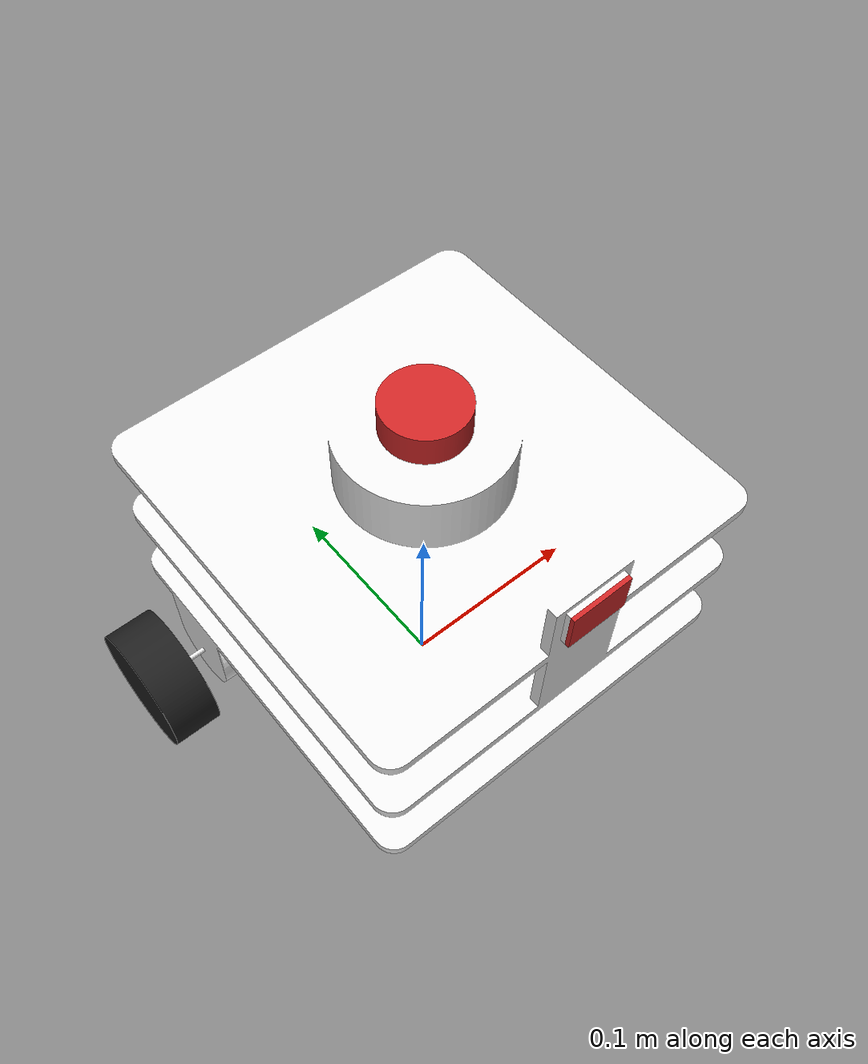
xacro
<?xml version="1.0" ?>
<robot name="bbot" xmlns:xacro="http://www.ros.org/wiki/xacro">

<xacro:include filename="$(find bbot_description)/urdf/materials.xacro" />
<xacro:include filename="$(find bbot_description)/urdf/bbot.trans" />
<xacro:include filename="$(find bbot_description)/urdf/bbot.gazebo" />
<xacro:include filename="$(find bbot_description)/urdf/camera1.xacro" />
<xacro:include filename="$(find bbot_description)/urdf/lidar1.xacro" />
<xacro:include filename="$(find bbot_description)/urdf/ros2_control.xacro" />

<link name="base_footprint"></link>

<link name="base_link">
  <inertial>
    <origin xyz="-0.006314243163658662 2.1121252064254716e-15 0.10298851522133046" rpy="0 0 0"/>
    <mass value="1.0491220696897063"/>
    <inertia ixx="0.006187" iyy="0.006007" izz="0.00631" ixy="-0.0" iyz="0.0" ixz="-0.000632"/>
  </inertial>
  <visual>
    <origin xyz="0 0 0" rpy="0 0 0"/>
    <geometry>
      <mesh filename="file://$(find bbot_description)/meshes/base_link.stl" scale="0.001 0.001 0.001"/>
    </geometry>
    <material name="white"/>
  </visual>
  <collision>
    <origin xyz="0 0 0" rpy="0 0 0"/>
    <geometry>
      <mesh filename="file://$(find bbot_description)/meshes/base_link.stl" scale="0.001 0.001 0.001"/>
    </geometry>
  </collision>
</link>

<link name="lidar">
  <inertial>
    <origin xyz="0.0 0.0 0.007500000000000034" rpy="0 0 0"/>
    <mass value="0.02686061718819272"/>
    <inertia ixx="3e-06" iyy="3e-06" izz="5e-06" ixy="0.0" iyz="0.0" ixz="-0.0"/>
  </inertial>
  <visual>
    <origin xyz="-0.0 -0.0 -0.1875" rpy="0 0 0"/>
    <geometry>
      <mesh filename="file://$(find bbot_description)/meshes/lidar_1.stl" scale="0.001 0.001 0.001"/>
    </geometry>
    <material name="red"/>
  </visual>
  <collision>
    <origin xyz="-0.0 -0.0 -0.1875" rpy="0 0 0"/>
    <geometry>
      <mesh filename="file://$(find bbot_description)/meshes/lidar_1.stl" scale="0.001 0.001 0.001"/>
    </geometry>
  </collision>
</link>

<link name="leftwheel">
  <inertial>
    <origin xyz="-8.195639167318802e-10 0.012500000000000025 5.66244127975235e-10" rpy="0 0 0"/>
    <mass value="0.11821469543761903"/>
    <inertia ixx="3.7e-05" iyy="6.2e-05" izz="3.7e-05" ixy="0.0" iyz="-0.0" ixz="0.0"/>
  </inertial>
  <visual>
    <origin xyz="0.055 -0.1125 -0.0325" rpy="0 0 0"/>
    <geometry>
      <mesh filename="file://$(find bbot_description)/meshes/leftwheel_1.stl" scale="0.001 0.001 0.001"/>
    </geometry>
    <material name="black"/>
  </visual>
  <collision>
    <origin xyz="0.055 -0.1125 -0.0325" rpy="0 0 0"/>
    <geometry>
      <mesh filename="file://$(find bbot_description)/meshes/leftwheel_1.stl" scale="0.001 0.001 0.001"/>
    </geometry>
  </collision>
</link>

<link name="rigthwheel">
  <inertial>
    <origin xyz="-8.195638681596229e-10 -0.01250000000000008 5.66244127975235e-10" rpy="0 0 0"/>
    <mass value="0.11821469543761906"/>
    <inertia ixx="3.7e-05" iyy="6.2e-05" izz="3.7e-05" ixy="0.0" iyz="0.0" ixz="0.0"/>
  </inertial>
  <visual>
    <origin xyz="0.055 0.1125 -0.0325" rpy="0 0 0"/>
    <geometry>
      <mesh filename="file://$(find bbot_description)/meshes/rigthwheel_1.stl" scale="0.001 0.001 0.001"/>
    </geometry>
    <material name="black"/>
  </visual>
  <collision>
    <origin xyz="0.055 0.1125 -0.0325" rpy="0 0 0"/>
    <geometry>
      <mesh filename="file://$(find bbot_description)/meshes/rigthwheel_1.stl" scale="0.001 0.001 0.001"/>
    </geometry>
  </collision>
</link>

<link name="camera">
  <inertial>
    <origin xyz="0.0010000000000000564 2.298161660974074e-17 2.6077032477811457e-09" rpy="0 0 0"/>
    <mass value="0.0017100000509619655"/>
    <inertia ixx="3.7e-07" iyy="6.2e-07" izz="3.7e-07" ixy="-0.0" iyz="0.0" ixz="0.0"/>
  </inertial>
  <visual>
    <origin xyz="-0.1025 -0.0 -0.175" rpy="0 0 0"/>
    <geometry>
      <mesh filename="file://$(find bbot_description)/meshes/camera_1.stl" scale="0.001 0.001 0.001"/>
    </geometry>
    <material name="red"/>
  </visual>
  <collision>
    <origin xyz="-0.1025 -0.0 -0.175" rpy="0 0 0"/>
    <geometry>
      <mesh filename="file://$(find bbot_description)/meshes/camera_1.stl" scale="0.001 0.001 0.001"/>
    </geometry>
  </collision>
</link>

<joint name="footprint_base_joint" type="fixed">
  <origin xyz="0.0 0.0 0.0" rpy="0 0 0"/>
  <parent link="base_footprint"/>
  <child link="base_link"/>
</joint>

<joint name="base_lidar_joint" type="fixed">
  <origin xyz="0.0 0.0 0.1875" rpy="0 0 0"/>
  <parent link="base_link"/>
  <child link="lidar"/>
</joint>

<joint name="base_leftwheel_joint" type="continuous">
  <origin xyz="-0.055 0.1125 0.0325" rpy="0 0 0"/>
  <parent link="base_link"/>
  <child link="leftwheel"/>
  <axis xyz="0.0 -1.0 0.0"/>
</joint>

<joint name="base_rightwheel_joint" type="continuous">
  <origin xyz="-0.055 -0.1125 0.0325" rpy="0 0 0"/>
  <parent link="base_link"/>
  <child link="rigthwheel"/>
  <axis xyz="0.0 -1.0 0.0"/>
</joint>

<joint name="base_camera_joint" type="fixed">
  <origin xyz="0.1025 0.0 0.175" rpy="0 0 0"/>
  <parent link="base_link"/>
  <child link="camera"/>
</joint>

</robot>

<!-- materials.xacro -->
<robot name="bbot" xmlns:xacro="http://www.ros.org/wiki/xacro" >

<material name="silver">
  <color rgba="0.700 0.700 0.700 1.000"/>
</material>

</robot>

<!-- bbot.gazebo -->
<robot name="bbot" xmlns:xacro="http://www.ros.org/wiki/xacro" >

<xacro:property name="body_color" value="Gazebo/Silver" />

<gazebo reference="base_link">
  <material>${body_color}</material>
  <mu1>0.2</mu1>
  <mu2>0.2</mu2>
  <self_collide>true</self_collide>
  <gravity>true</gravity>
</gazebo>

<gazebo reference="lidar">
  <material>${body_color}</material>
  <mu1>0.2</mu1>
  <mu2>0.2</mu2>
  <self_collide>true</self_collide>
</gazebo>

<gazebo reference="leftwheel">
  <material>${body_color}</material>
  <mu1>0.2</mu1>
  <mu2>0.2</mu2>
  <self_collide>true</self_collide>
</gazebo>

<gazebo reference="rigthwheel">
  <material>${body_color}</material>
  <mu1>0.2</mu1>
  <mu2>0.2</mu2>
  <self_collide>true</self_collide>
</gazebo>

<gazebo reference="camera">
  <material>${body_color}</material>
  <mu1>0.2</mu1>
  <mu2>0.2</mu2>
  <self_collide>true</self_collide>
</gazebo>

</robot>

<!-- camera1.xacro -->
<robot xmlns:xacro="http://www.ros.org/wiki/xacro" >

    <link name="camera_link_optical"></link>

    <joint name="camera_optical_joint" type="fixed">
        <parent link="camera"/>
        <child link="camera_link_optical"/>
        <origin xyz="0 0 0" rpy="${-pi/2} 0 ${-pi/2}"/>
    </joint>

    <gazebo reference="camera">

        <sensor name="camera" type="camera">
            <pose> 0 0 0 0 0 0 </pose>
            <visualize>true</visualize>
            <update_rate>10</update_rate>
            <camera>
                <horizontal_fov>1.089</horizontal_fov>
                <image>
                    <format>R8G8B8</format>
                    <width>640</width>
                    <height>480</height>
                </image>
                <clip>
                    <near>0.05</near>
                    <far>8.0</far>
                </clip>
            </camera>
            <plugin name="camera_controller" filename="libgazebo_ros_camera.so">
                <frame_name>camera_link_optical</frame_name>
            </plugin>
        </sensor>
    </gazebo>

</robot>
